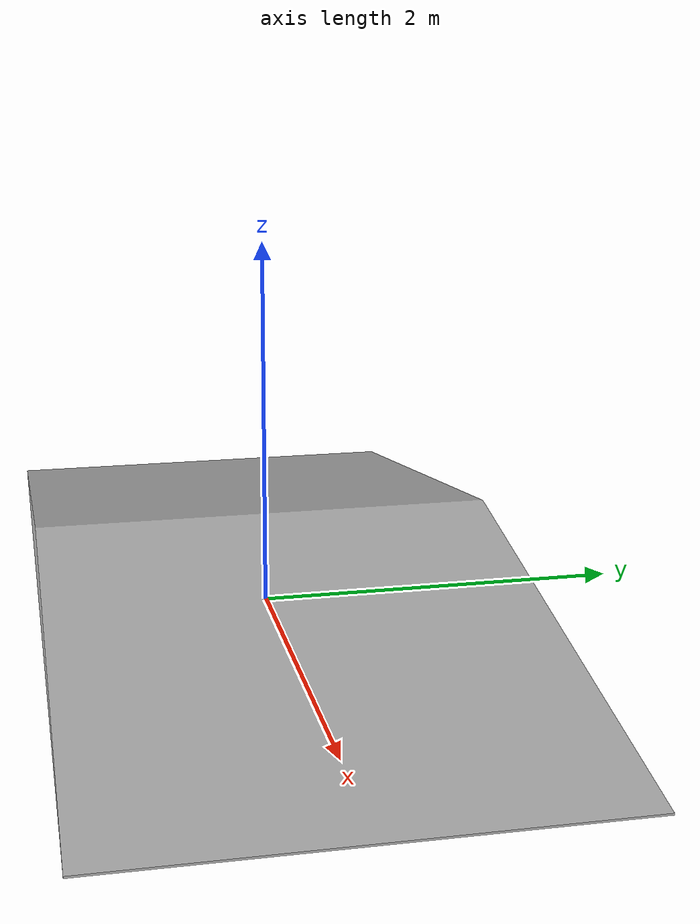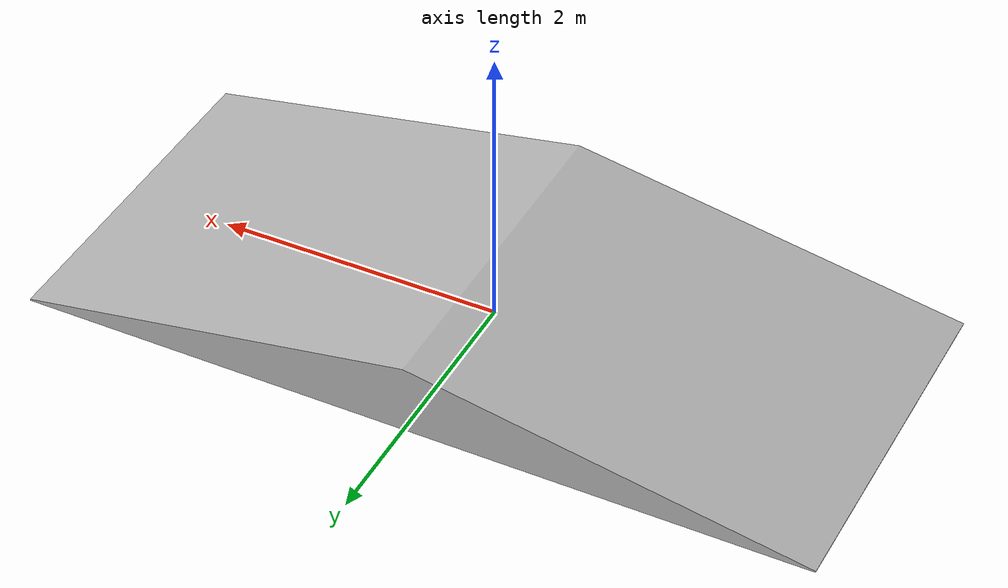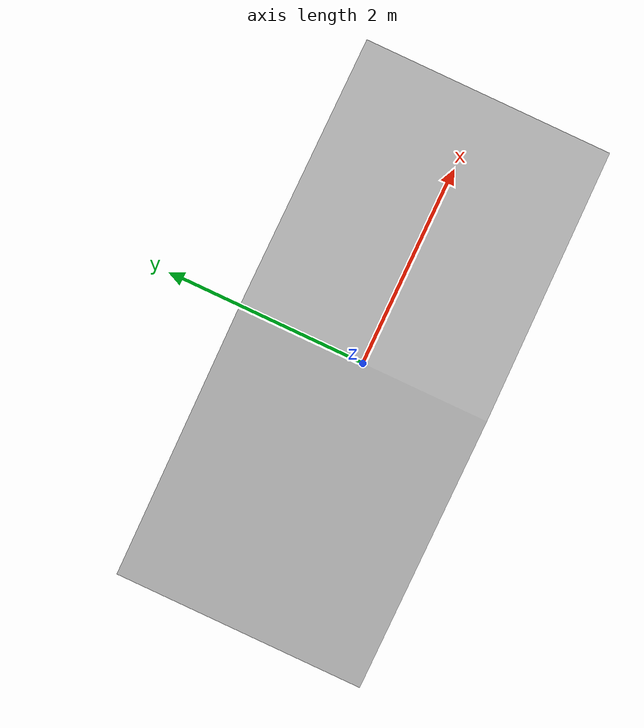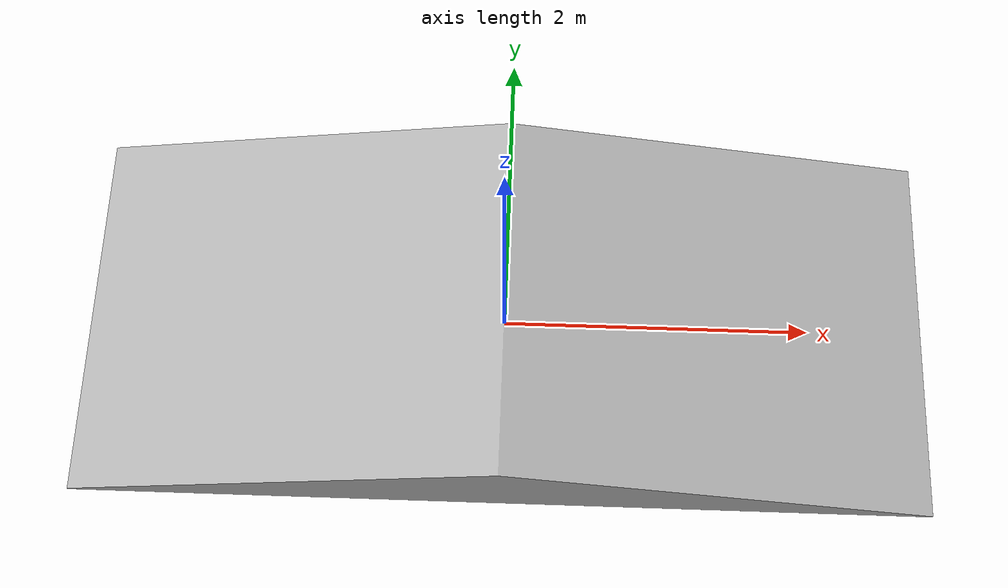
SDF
<?xml version="1.0"?>
<sdf version="1.5">
  <model name='ramp'>
    <static>true</static>
    <link name='link'>
      <collision name='collision'>
        <geometry>
          <mesh>
            <uri>model://ramp/meshes/ramp.dae</uri>
            <scale>1 1 1</scale>
          </mesh>
        </geometry>
        <max_contacts>10</max_contacts>
        <surface>
          <friction>
            <ode>
              <mu>100</mu>
              <mu2>50</mu2>
            </ode>
          </friction>
        </surface>
      </collision>
      <visual name='visual'>
        <geometry>
          <mesh>
            <uri>model://ramp/meshes/ramp.dae</uri>
            <scale>1 1 1</scale>
          </mesh>
        </geometry>
      </visual>
      <self_collide>0</self_collide>
      <kinematic>0</kinematic>
    </link>
  </model>
</sdf>
